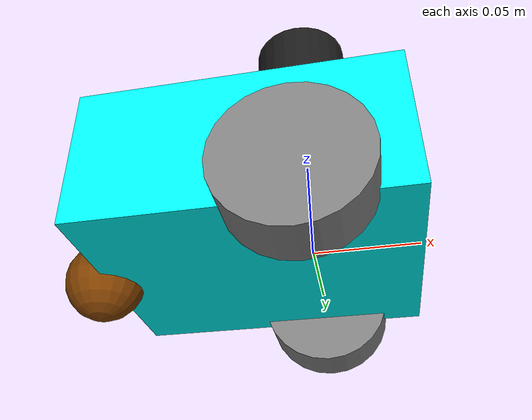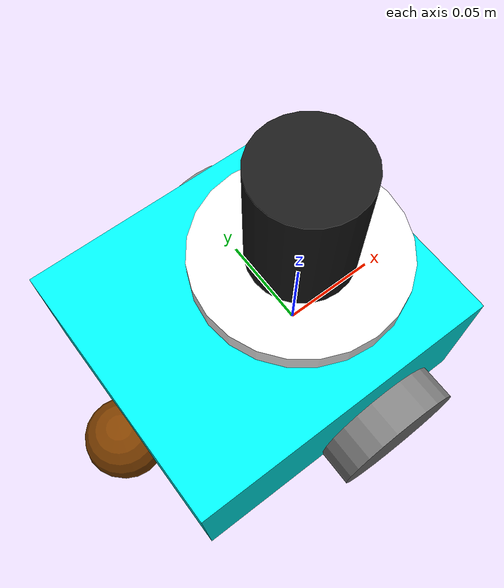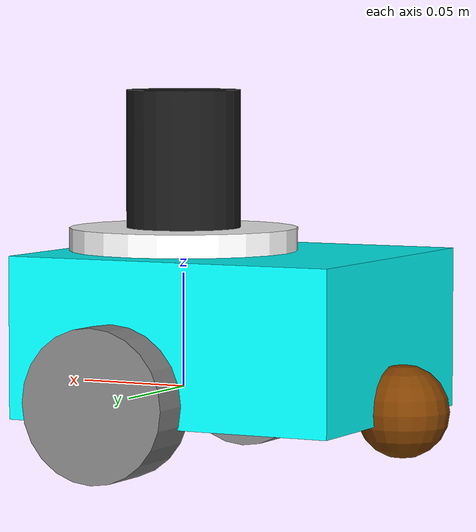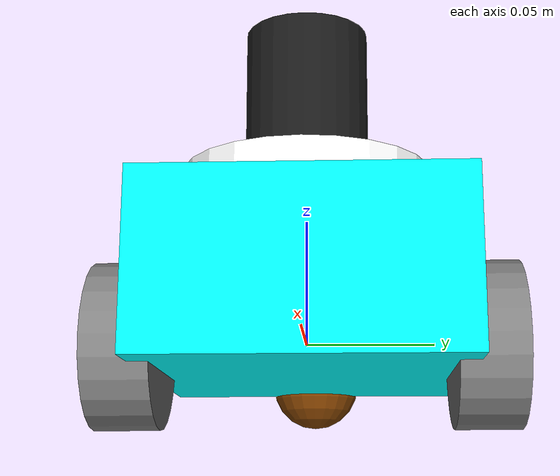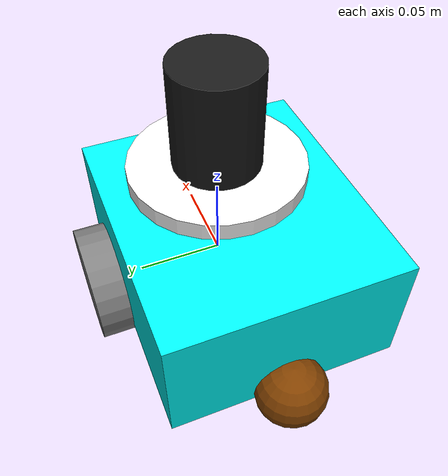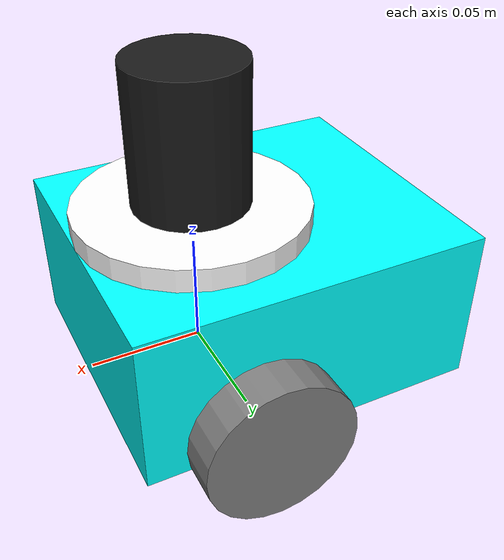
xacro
<?xml version="1.0" ?>
<robot name='robot' xmlns:xacro="http://ros.org/wiki/xacro">

  <xacro:include filename="$(find my_robot)/urdf/robot.gazebo.xacro" />
  <!--xacro:include filename="$(find robot_description)/urdf/lidar.urdf.xacro" /-->
  <!--xacro:include filename="$(find robot_description)/urdf/depth.urdf.xacro" /-->

  <xacro:property name="chassis_length" value="0.15"/>
  <xacro:property name="chassis_width" value="0.13"/>
  <xacro:property name="chassis_height" value="0.07"/>

  <xacro:property name="wheel_radius" value="0.033"/>
  <xacro:property name="wheel_thickness" value="0.026"/>
  <xacro:property name="wheel_mass" value="0.05"/>

  <xacro:property name="wheel_offset_x" value="0.1"/>
  <xacro:property name="wheel_offset_y" value="0.07"/>
  <xacro:property name="wheel_offset_z" value="0.01"/>

  <xacro:property name="caster_wheel_radius" value="0.02"/>
  <xacro:property name="caster_wheel_mass" value="0.01"/>
  <xacro:property name="caster_wheel_offset_x" value="0.005"/>
  <xacro:property name="caster_wheel_offset_z" value="0.005"/>
  <xacro:property name="mass" value="1.0"/>

  <!-- Параметры для шляпы -->
  <xacro:property name="hat_brim_radius" value="0.05"/>    <!-- Радиус полей шляпы -->
  <xacro:property name="hat_brim_height" value="0.01"/>    <!-- Толщина полей -->
  <xacro:property name="hat_crown_radius" value="0.025"/>  <!-- Радиус тульи -->
  <xacro:property name="hat_crown_height" value="0.06"/>   <!-- Высота тульи -->
  <xacro:property name="hat_offset_z" value="0.1"/>       <!-- Высота крепления над base_link -->
  <xacro:property name="hat_mass" value="0.05"/>           <!-- Масса шляпы -->

  <!-- Материалы -->
  <material name="Cyan">
    <color rgba="0 1.0 1.0 1.0"/>
  </material>

  <material name="Brown">
    <color rgba="0.5 0.25 0.0 1.0"/>
  </material>

  <material name="Gray">
    <color rgba="0.5 0.5 0.5 1.0"/>
  </material>

  <material name="Black">
    <color rgba="0.1 0.1 0.1 1.0"/>
  </material>

  <material name="White">
    <color rgba="1.0 1.0 1.0 1.0"/>
  </material>

  <!-- Основные ссылки робота -->
  <link name="base_link">
    <inertial>
      <origin xyz="0 0 0" rpy="0 0 0"/>
      <mass value="0.001"/>
      <inertia ixx="1e-6" ixy="0" ixz="0" iyy="1e-6" iyz="0" izz="1e-6"/>
    </inertial>
  </link>

  <link name="base_footprint">
    <inertial>
      <origin xyz="0 0 0" rpy="0 0 0"/>
      <mass value="0.001"/>
      <inertia ixx="1e-6" ixy="0" ixz="0" iyy="1e-6" iyz="0" izz="1e-6"/>
    </inertial>
  </link>

  <!-- Соединения основания -->
  <joint name="base_footprint_joint" type="fixed">
    <parent link="base_link"/>
    <child link="base_footprint"/>
    <origin xyz="0 0 -0.138" rpy="0 0 0"/>
  </joint>

  <joint name="chassis_joint" type="fixed">
    <parent link="base_link"/>
    <child link="chassis"/>
    <origin xyz="${-wheel_offset_x} 0 ${-wheel_offset_z}"/>
  </joint>

  <!-- Шасси -->
  <link name='chassis'>
    <inertial>
      <origin xyz="${chassis_length/2} 0 ${chassis_height/2}" rpy="0 0 0"/>
      <mass value="${mass}" />
      <inertia ixx="${(1/12) * mass * (chassis_width*chassis_width+chassis_height*chassis_height)}" ixy="0.0" ixz="0.0"
         iyy="${(1/12) * mass * (chassis_length*chassis_length+chassis_height*chassis_height)}" iyz="0.0"
         izz="${(1/12) * mass * (chassis_length*chassis_length+chassis_width*chassis_width)}" />
    </inertial>
    <visual>
      <origin xyz="${chassis_length/2} 0 ${chassis_height/2}"/>
      <geometry>
        <box size="${chassis_length} ${chassis_width} ${chassis_height}"/>
      </geometry>
      <material name="Cyan"/>
    </visual>
    <collision>
      <origin xyz="${chassis_length/2} 0 ${chassis_height/2}"/>
      <geometry>
        <box size="${chassis_length} ${chassis_width} ${chassis_height}"/>
      </geometry>
    </collision>
  </link>

  <!-- Левое колесо -->
  <joint name="left_wheel_joint" type="continuous">
    <parent link="base_link"/>
    <child link="left_wheel"/>
    <origin xyz="0 ${wheel_offset_y} 0" rpy="-${pi/2} 0 0" />
    <axis xyz="0 0 1"/>
  </joint>

  <link name="left_wheel">
    <inertial>
      <origin xyz="0 0 0" rpy="0 0 0"/>
      <mass value="${wheel_mass}" />
      <inertia ixx="${(1/12) * wheel_mass * (3*wheel_radius*wheel_radius + wheel_thickness*wheel_thickness)}" ixy="0.0" ixz="0.0"
         iyy="${(1/12) * wheel_mass * (3*wheel_radius*wheel_radius + wheel_thickness*wheel_thickness)}" iyz="0.0"
         izz="${(1/2) * wheel_mass * (wheel_radius*wheel_radius)}" />
    </inertial>
    <visual>
      <geometry>
        <cylinder radius="${wheel_radius}" length="${wheel_thickness}"/>
      </geometry>
      <material name="Gray"/>
    </visual>
    <collision>
      <geometry>
        <sphere radius="${wheel_radius}"/>
      </geometry>
    </collision>
  </link>

  <!-- Правое колесо -->
  <joint name="right_wheel_joint" type="continuous">
    <parent link="base_link"/>
    <child link="right_wheel"/>
    <origin xyz="0 ${-wheel_offset_y} 0" rpy="${pi/2} 0 0" />
    <axis xyz="0 0 -1"/>
  </joint>

  <link name="right_wheel">
    <inertial>
      <origin xyz="0 0 0" rpy="0 0 0"/>
      <mass value="${wheel_mass}" />
      <inertia ixx="${(1/12) * wheel_mass * (3*wheel_radius*wheel_radius + wheel_thickness*wheel_thickness)}" ixy="0.0" ixz="0.0"
         iyy="${(1/12) * wheel_mass * (3*wheel_radius*wheel_radius + wheel_thickness*wheel_thickness)}" iyz="0.0"
         izz="${(1/2) * wheel_mass * (wheel_radius*wheel_radius)}" />
    </inertial>
    <visual>
      <geometry>
        <cylinder radius="${wheel_radius}" length="${wheel_thickness}"/>
      </geometry>
      <material name="Gray"/>
    </visual>
    <collision>
      <geometry>
        <sphere radius="${wheel_radius}"/>
      </geometry>
    </collision>
  </link>

  <!-- Опорное колесо -->
  <joint name="caster_wheel_joint" type="fixed">
    <parent link="chassis"/>
    <child link="caster_wheel"/>
    <origin xyz="${-caster_wheel_offset_x} 0 ${caster_wheel_offset_z}"/>
  </joint>

  <link name="caster_wheel">
    <inertial>
      <origin xyz="0 0 0" rpy="0 0 0"/>
      <mass value="${caster_wheel_mass}" />
      <inertia ixx="${(2/5) * caster_wheel_mass * (caster_wheel_radius*caster_wheel_radius)}" ixy="0.0" ixz="0.0"
         iyy="${(2/5) * caster_wheel_mass * (caster_wheel_radius*caster_wheel_radius)}" iyz="0.0"
         izz="${(2/5) * caster_wheel_mass * (caster_wheel_radius*caster_wheel_radius)}" />
    </inertial>
    <visual>
      <geometry>
        <sphere radius="${caster_wheel_radius}"/>
      </geometry>
      <material name="Brown"/>
    </visual>
    <collision>
      <geometry>
        <sphere radius="${caster_wheel_radius}"/>
      </geometry>
    </collision>
  </link>

  <!-- ШЛЯПА - НАЧАЛО -->

  <!-- Тулья шляпы (верхняя длинная часть) -->
  <link name="hat_crown">
    <inertial>
      <origin xyz="0 0 ${hat_crown_height/2 - 0.03}" rpy="0 0 0"/>
      <mass value="${hat_mass * 0.6}"/>
      <inertia ixx="${(hat_mass * 0.6) * (3*hat_crown_radius*hat_crown_radius + hat_crown_height*hat_crown_height) / 12}"
               ixy="0" ixz="0"
               iyy="${(hat_mass * 0.6) * (3*hat_crown_radius*hat_crown_radius + hat_crown_height*hat_crown_height) / 12}"
               iyz="0"
               izz="${(hat_mass * 0.6) * hat_crown_radius*hat_crown_radius / 2}"/>
    </inertial>
    <visual>
      <origin xyz="0 0 ${hat_crown_height/2 - 0.03}" rpy="0 0 0"/>
      <geometry>
        <cylinder radius="${hat_crown_radius}" length="${hat_crown_height}"/>
      </geometry>
      <material name="Black"/>
    </visual>
    <collision>
      <origin xyz="0 0 ${hat_crown_height/2 - 0.03}" rpy="0 0 0"/>
      <geometry>
        <cylinder radius="${hat_crown_radius}" length="${hat_crown_height}"/>
      </geometry>
    </collision>
  </link>

  <!-- Поля шляпы (нижняя широкая часть) -->
  <link name="hat_brim">
    <inertial>
      <origin xyz="0 0 ${hat_brim_height/2 - 0.005}" rpy="0 0 0"/>
      <mass value="${hat_mass * 0.4}"/>
      <inertia ixx="${(hat_mass * 0.4) * (3*hat_brim_radius*hat_brim_radius + hat_brim_height*hat_brim_height) / 12}"
               ixy="0" ixz="0"
               iyy="${(hat_mass * 0.4) * (3*hat_brim_radius*hat_brim_radius + hat_brim_height*hat_brim_height) / 12}"
               iyz="0"
               izz="${(hat_mass * 0.4) * hat_brim_radius*hat_brim_radius / 2}"/>
    </inertial>
    <visual>
      <origin xyz="0 0 ${hat_brim_height/2 - 0.005}" rpy="0 0 0"/>
      <geometry>
        <cylinder radius="${hat_brim_radius}" length="${hat_brim_height}"/>
      </geometry>
      <material name="White"/>
    </visual>
    <collision>
      <origin xyz="0 0 ${hat_brim_height/2 - 0.005}" rpy="0 0 0"/>
      <geometry>
        <cylinder radius="${hat_brim_radius}" length="${hat_brim_height}"/>
      </geometry>
    </collision>
  </link>

  <!-- Соединение шляпы с основанием -->
  <joint name="hat_base_joint" type="fixed">
    <parent link="base_link"/>
    <child link="hat_crown"/>
    <origin xyz="0 0 ${hat_offset_z}" rpy="0 0 0"/>
  </joint>

  <!-- Соединение тульи с полями -->
  <joint name="hat_crown_brim_joint" type="fixed">
    <parent link="hat_crown"/>
    <child link="hat_brim"/>
    <origin xyz="0 0 ${-hat_crown_height/2 - hat_brim_height/2}" rpy="0 0 0"/>
  </joint>

  <!-- ШЛЯПА - КОНЕЦ -->

  <!-- Физические свойства для Gazebo -->
  <gazebo reference="caster_wheel">
    <mu1 value="0.001"/>
    <mu2 value="0.001"/>
  </gazebo>

  <!-- Физические свойства для шляпы -->
  <gazebo reference="hat_crown">
    <material>Gazebo/Black</material>
    <mu1 value="0.5"/>
    <mu2 value="0.5"/>
  </gazebo>

  <gazebo reference="hat_brim">
    <material>Gazebo/White</material>
    <mu1 value="0.5"/>
    <mu2 value="0.5"/>
  </gazebo>

</robot>
